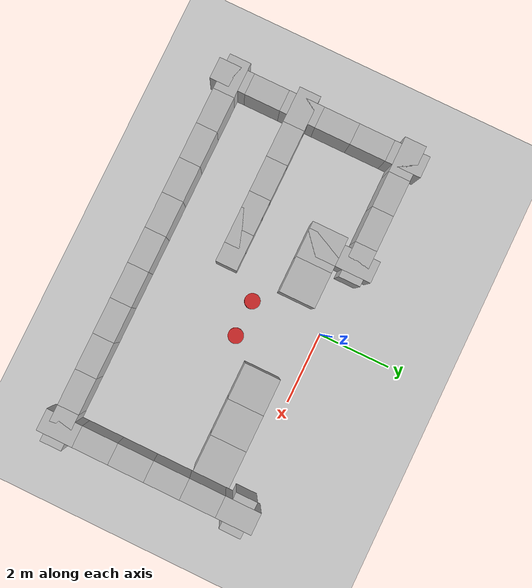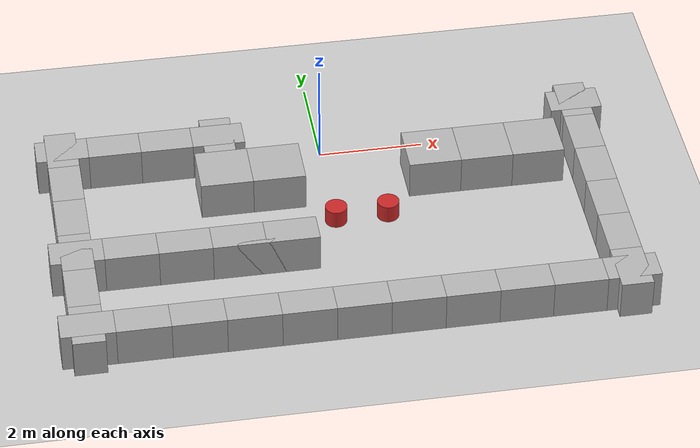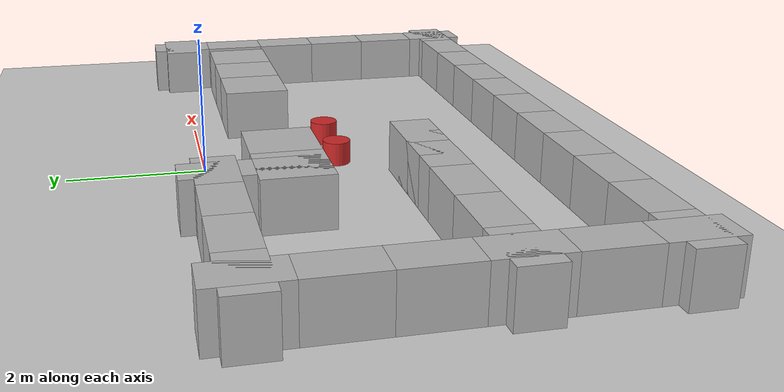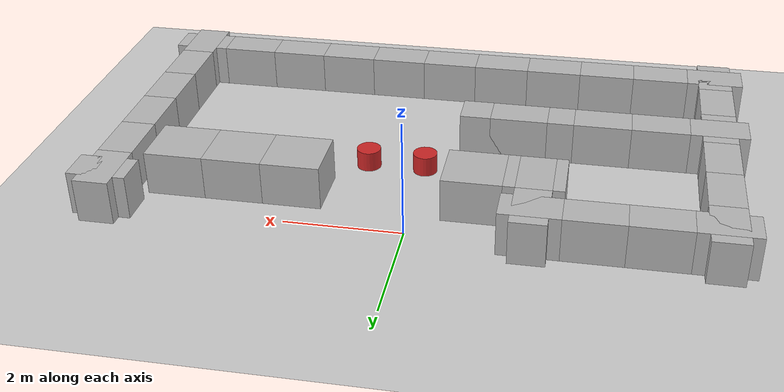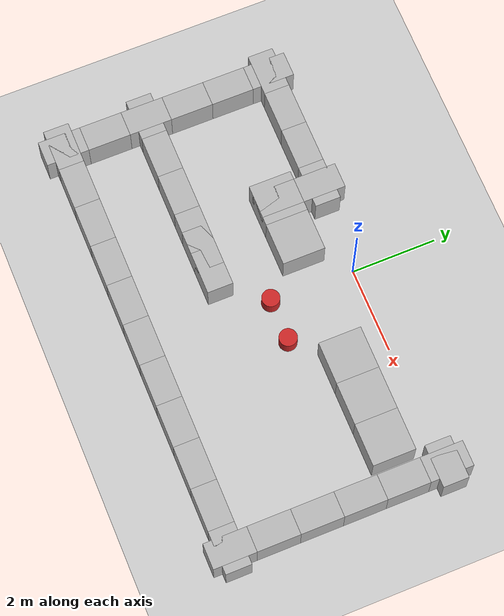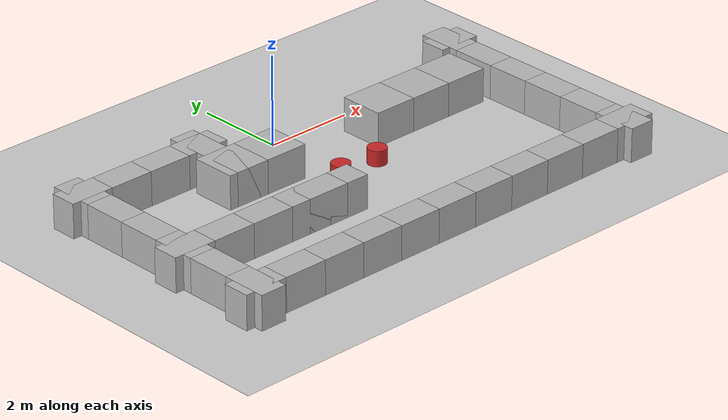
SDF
<sdf version="1.4">
 <world name="default">
  <model name="ground_plane">
   <static>1</static>
   <link name="link">
    <collision name="collision">
     <geometry><plane><normal>0 0 1</normal><size>100 100</size></plane></geometry>
     <surface><friction><ode><mu>100</mu><mu2>50</mu2></ode></friction></surface>
    </collision>
    <visual name="visual">
     <cast_shadows>0</cast_shadows>
     <geometry><plane><normal>0 0 1</normal><size>100 100</size></plane></geometry>
     <material>
      <script><uri>file://media/materials/scripts/gazebo.material</uri><name>Gazebo/Grey</name></script>
     </material>
    </visual>
    <velocity_decay><linear>0</linear><angular>0</angular></velocity_decay>
   </link>
  </model>
  <model name="wall_0">
   <static>1</static>
   <link name="link">
    <pose>0 0 0.25 0 -0 0</pose>
    <collision name="collision"><geometry><box><size>1 0.6 1</size></box></geometry></collision>
    <visual name="visual">
     <geometry>
      <mesh><uri>model://brick_box_3x1x3/meshes/simple_box.dae</uri><scale>1 0.6 1</scale></mesh>
     </geometry>
     <material>
      <script>
       <uri>model://brick_box_3x1x3/materials/scripts</uri>
       <uri>model://brick_box_3x1x3/materials/textures</uri>
       <name>BrickBox/Diffuse</name>
      </script>
     </material>
    </visual>
    <velocity_decay><linear>0</linear><angular>0</angular></velocity_decay>
   </link>
   <pose>4 -5 0 0 -0 0</pose>
  </model>
  <model name="wall_1">
   <static>1</static>
   <link name="link">
    <pose>0 0 0.25 0 -0 0</pose>
    <collision name="collision"><geometry><box><size>1 0.6 1</size></box></geometry></collision>
    <visual name="visual">
     <geometry>
      <mesh><uri>model://brick_box_3x1x3/meshes/simple_box.dae</uri><scale>1 0.6 1</scale></mesh>
     </geometry>
     <material>
      <script>
       <uri>model://brick_box_3x1x3/materials/scripts</uri>
       <uri>model://brick_box_3x1x3/materials/textures</uri>
       <name>BrickBox/Diffuse</name>
      </script>
     </material>
    </visual>
    <velocity_decay><linear>0</linear><angular>0</angular></velocity_decay>
   </link>
   <pose>3 -5 0 0 -0 0</pose>
  </model>
  <model name="wall_2">
   <static>1</static>
   <link name="link">
    <pose>0 0 0.25 0 -0 0</pose>
    <collision name="collision"><geometry><box><size>1 0.6 1</size></box></geometry></collision>
    <visual name="visual">
     <geometry>
      <mesh><uri>model://brick_box_3x1x3/meshes/simple_box.dae</uri><scale>1 0.6 1</scale></mesh>
     </geometry>
     <material>
      <script>
       <uri>model://brick_box_3x1x3/materials/scripts</uri>
       <uri>model://brick_box_3x1x3/materials/textures</uri>
       <name>BrickBox/Diffuse</name>
      </script>
     </material>
    </visual>
    <velocity_decay><linear>0</linear><angular>0</angular></velocity_decay>
   </link>
   <pose>2 -5 0 0 -0 0</pose>
  </model>
  <model name="wall_3">
   <static>1</static>
   <link name="link">
    <pose>0 0 0.25 0 -0 0</pose>
    <collision name="collision"><geometry><box><size>1 0.6 1</size></box></geometry></collision>
    <visual name="visual">
     <geometry>
      <mesh><uri>model://brick_box_3x1x3/meshes/simple_box.dae</uri><scale>1 0.6 1</scale></mesh>
     </geometry>
     <material>
      <script>
       <uri>model://brick_box_3x1x3/materials/scripts</uri>
       <uri>model://brick_box_3x1x3/materials/textures</uri>
       <name>BrickBox/Diffuse</name>
      </script>
     </material>
    </visual>
    <velocity_decay><linear>0</linear><angular>0</angular></velocity_decay>
   </link>
   <pose>5 -5 0 0 -0 0</pose>
  </model>
  <model name="wall_4">
   <static>1</static>
   <link name="link">
    <pose>0 0 0.25 0 -0 0</pose>
    <collision name="collision"><geometry><box><size>0.6 1 1</size></box></geometry></collision>
    <visual name="visual">
     <geometry>
      <mesh><uri>model://brick_box_3x1x3/meshes/simple_box.dae</uri><scale>0.6 1 1</scale></mesh>
     </geometry>
     <material>
      <script>
       <uri>model://brick_box_3x1x3/materials/scripts</uri>
       <uri>model://brick_box_3x1x3/materials/textures</uri>
       <name>BrickBox/Diffuse</name>
      </script>
     </material>
    </visual>
    <velocity_decay><linear>0</linear><angular>0</angular></velocity_decay>
   </link>
   <pose>5 -5 0 0 -0 0</pose>
  </model>
  <model name="wall_5">
   <static>1</static>
   <link name="link">
    <pose>0 0 0.25 0 -0 0</pose>
    <collision name="collision"><geometry><box><size>0.6 1 1</size></box></geometry></collision>
    <visual name="visual">
     <geometry>
      <mesh><uri>model://brick_box_3x1x3/meshes/simple_box.dae</uri><scale>0.6 1 1</scale></mesh>
     </geometry>
     <material>
      <script>
       <uri>model://brick_box_3x1x3/materials/scripts</uri>
       <uri>model://brick_box_3x1x3/materials/textures</uri>
       <name>BrickBox/Diffuse</name>
      </script>
     </material>
    </visual>
    <velocity_decay><linear>0</linear><angular>0</angular></velocity_decay>
   </link>
   <pose>5 -4 0 0 -0 0</pose>
  </model>
  <model name="wall_6">
   <static>1</static>
   <link name="link">
    <pose>0 0 0.25 0 -0 0</pose>
    <collision name="collision"><geometry><box><size>1 0.6 1</size></box></geometry></collision>
    <visual name="visual">
     <geometry>
      <mesh><uri>model://brick_box_3x1x3/meshes/simple_box.dae</uri><scale>1 0.6 1</scale></mesh>
     </geometry>
     <material>
      <script>
       <uri>model://brick_box_3x1x3/materials/scripts</uri>
       <uri>model://brick_box_3x1x3/materials/textures</uri>
       <name>BrickBox/Diffuse</name>
      </script>
     </material>
    </visual>
    <velocity_decay><linear>0</linear><angular>0</angular></velocity_decay>
   </link>
   <pose>1 -5 0 0 -0 0</pose>
  </model>
  <model name="wall_7">
   <static>1</static>
   <link name="link">
    <pose>0 0 0.25 0 -0 0</pose>
    <collision name="collision"><geometry><box><size>1 0.6 1</size></box></geometry></collision>
    <visual name="visual">
     <geometry>
      <mesh><uri>model://brick_box_3x1x3/meshes/simple_box.dae</uri><scale>1 0.6 1</scale></mesh>
     </geometry>
     <material>
      <script>
       <uri>model://brick_box_3x1x3/materials/scripts</uri>
       <uri>model://brick_box_3x1x3/materials/textures</uri>
       <name>BrickBox/Diffuse</name>
      </script>
     </material>
    </visual>
    <velocity_decay><linear>0</linear><angular>0</angular></velocity_decay>
   </link>
   <pose>0 -5 0 0 -0 0</pose>
  </model>
  <model name="wall_8">
   <static>1</static>
   <link name="link">
    <pose>0 0 0.25 0 -0 0</pose>
    <collision name="collision"><geometry><box><size>1 0.6 1</size></box></geometry></collision>
    <visual name="visual">
     <geometry>
      <mesh><uri>model://brick_box_3x1x3/meshes/simple_box.dae</uri><scale>1 0.6 1</scale></mesh>
     </geometry>
     <material>
      <script>
       <uri>model://brick_box_3x1x3/materials/scripts</uri>
       <uri>model://brick_box_3x1x3/materials/textures</uri>
       <name>BrickBox/Diffuse</name>
      </script>
     </material>
    </visual>
    <velocity_decay><linear>0</linear><angular>0</angular></velocity_decay>
   </link>
   <pose>-1 -5 0 0 -0 0</pose>
  </model>
  <model name="wall_9">
   <static>1</static>
   <link name="link">
    <pose>0 0 0.25 0 -0 0</pose>
    <collision name="collision"><geometry><box><size>1 0.6 1</size></box></geometry></collision>
    <visual name="visual">
     <geometry>
      <mesh><uri>model://brick_box_3x1x3/meshes/simple_box.dae</uri><scale>1 0.6 1</scale></mesh>
     </geometry>
     <material>
      <script>
       <uri>model://brick_box_3x1x3/materials/scripts</uri>
       <uri>model://brick_box_3x1x3/materials/textures</uri>
       <name>BrickBox/Diffuse</name>
      </script>
     </material>
    </visual>
    <velocity_decay><linear>0</linear><angular>0</angular></velocity_decay>
   </link>
   <pose>-2 -5 0 0 -0 0</pose>
  </model>
  <model name="wall_10">
   <static>1</static>
   <link name="link">
    <pose>0 0 0.25 0 -0 0</pose>
    <collision name="collision"><geometry><box><size>1 0.6 1</size></box></geometry></collision>
    <visual name="visual">
     <geometry>
      <mesh><uri>model://brick_box_3x1x3/meshes/simple_box.dae</uri><scale>1 0.6 1</scale></mesh>
     </geometry>
     <material>
      <script>
       <uri>model://brick_box_3x1x3/materials/scripts</uri>
       <uri>model://brick_box_3x1x3/materials/textures</uri>
       <name>BrickBox/Diffuse</name>
      </script>
     </material>
    </visual>
    <velocity_decay><linear>0</linear><angular>0</angular></velocity_decay>
   </link>
   <pose>-3 -5 0 0 -0 0</pose>
  </model>
  <model name="wall_11">
   <static>1</static>
   <link name="link">
    <pose>0 0 0.25 0 -0 0</pose>
    <collision name="collision"><geometry><box><size>1 0.6 1</size></box></geometry></collision>
    <visual name="visual">
     <geometry>
      <mesh><uri>model://brick_box_3x1x3/meshes/simple_box.dae</uri><scale>1 0.6 1</scale></mesh>
     </geometry>
     <material>
      <script>
       <uri>model://brick_box_3x1x3/materials/scripts</uri>
       <uri>model://brick_box_3x1x3/materials/textures</uri>
       <name>BrickBox/Diffuse</name>
      </script>
     </material>
    </visual>
    <velocity_decay><linear>0</linear><angular>0</angular></velocity_decay>
   </link>
   <pose>-4 -5 0 0 -0 0</pose>
  </model>
  <model name="wall_12">
   <static>1</static>
   <link name="link">
    <pose>0 0 0.25 0 -0 0</pose>
    <collision name="collision"><geometry><box><size>1 0.6 1</size></box></geometry></collision>
    <visual name="visual">
     <geometry>
      <mesh><uri>model://brick_box_3x1x3/meshes/simple_box.dae</uri><scale>1 0.6 1</scale></mesh>
     </geometry>
     <material>
      <script>
       <uri>model://brick_box_3x1x3/materials/scripts</uri>
       <uri>model://brick_box_3x1x3/materials/textures</uri>
       <name>BrickBox/Diffuse</name>
      </script>
     </material>
    </visual>
    <velocity_decay><linear>0</linear><angular>0</angular></velocity_decay>
   </link>
   <pose>-5 -5 0 0 -0 0</pose>
  </model>
  <model name="wall_13">
   <static>1</static>
   <link name="link">
    <pose>0 0 0.25 0 -0 0</pose>
    <collision name="collision"><geometry><box><size>0.6 1 1</size></box></geometry></collision>
    <visual name="visual">
     <geometry>
      <mesh><uri>model://brick_box_3x1x3/meshes/simple_box.dae</uri><scale>0.6 1 1</scale></mesh>
     </geometry>
     <material>
      <script>
       <uri>model://brick_box_3x1x3/materials/scripts</uri>
       <uri>model://brick_box_3x1x3/materials/textures</uri>
       <name>BrickBox/Diffuse</name>
      </script>
     </material>
    </visual>
    <velocity_decay><linear>0</linear><angular>0</angular></velocity_decay>
   </link>
   <pose>5 -3 0 0 -0 0</pose>
  </model>
  <model name="wall_14">
   <static>1</static>
   <link name="link">
    <pose>0 0 0.25 0 -0 0</pose>
    <collision name="collision"><geometry><box><size>0.6 1 1</size></box></geometry></collision>
    <visual name="visual">
     <geometry>
      <mesh><uri>model://brick_box_3x1x3/meshes/simple_box.dae</uri><scale>0.6 1 1</scale></mesh>
     </geometry>
     <material>
      <script>
       <uri>model://brick_box_3x1x3/materials/scripts</uri>
       <uri>model://brick_box_3x1x3/materials/textures</uri>
       <name>BrickBox/Diffuse</name>
      </script>
     </material>
    </visual>
    <velocity_decay><linear>0</linear><angular>0</angular></velocity_decay>
   </link>
   <pose>5 -2 0 0 -0 0</pose>
  </model>
  <model name="wall_15">
   <static>1</static>
   <link name="link">
    <pose>0 0 0.25 0 -0 0</pose>
    <collision name="collision"><geometry><box><size>0.6 1 1</size></box></geometry></collision>
    <visual name="visual">
     <geometry>
      <mesh><uri>model://brick_box_3x1x3/meshes/simple_box.dae</uri><scale>0.6 1 1</scale></mesh>
     </geometry>
     <material>
      <script>
       <uri>model://brick_box_3x1x3/materials/scripts</uri>
       <uri>model://brick_box_3x1x3/materials/textures</uri>
       <name>BrickBox/Diffuse</name>
      </script>
     </material>
    </visual>
    <velocity_decay><linear>0</linear><angular>0</angular></velocity_decay>
   </link>
   <pose>5 -1 0 0 -0 0</pose>
  </model>
  <model name="wall_16">
   <static>1</static>
   <link name="link">
    <pose>0 0 0.25 0 -0 0</pose>
    <collision name="collision"><geometry><box><size>0.6 1 1</size></box></geometry></collision>
    <visual name="visual">
     <geometry>
      <mesh><uri>model://brick_box_3x1x3/meshes/simple_box.dae</uri><scale>0.6 1 1</scale></mesh>
     </geometry>
     <material>
      <script>
       <uri>model://brick_box_3x1x3/materials/scripts</uri>
       <uri>model://brick_box_3x1x3/materials/textures</uri>
       <name>BrickBox/Diffuse</name>
      </script>
     </material>
    </visual>
    <velocity_decay><linear>0</linear><angular>0</angular></velocity_decay>
   </link>
   <pose>5 0 0 0 -0 0</pose>
  </model>
  <model name="wall_33">
   <static>1</static>
   <link name="link">
    <pose>0 0 0.25 0 -0 0</pose>
    <collision name="collision"><geometry><box><size>0.6 1 1</size></box></geometry></collision>
    <visual name="visual">
     <geometry>
      <mesh><uri>model://brick_box_3x1x3/meshes/simple_box.dae</uri><scale>0.6 1 1</scale></mesh>
     </geometry>
     <material>
      <script>
       <uri>model://brick_box_3x1x3/materials/scripts</uri>
       <uri>model://brick_box_3x1x3/materials/textures</uri>
       <name>BrickBox/Diffuse</name>
      </script>
     </material>
    </visual>
    <velocity_decay><linear>0</linear><angular>0</angular></velocity_decay>
   </link>
   <pose>-5 -5 0 0 -0 0</pose>
  </model>
  <model name="wall_34">
   <static>1</static>
   <link name="link">
    <pose>0 0 0.25 0 -0 0</pose>
    <collision name="collision"><geometry><box><size>0.6 1 1</size></box></geometry></collision>
    <visual name="visual">
     <geometry>
      <mesh><uri>model://brick_box_3x1x3/meshes/simple_box.dae</uri><scale>0.6 1 1</scale></mesh>
     </geometry>
     <material>
      <script>
       <uri>model://brick_box_3x1x3/materials/scripts</uri>
       <uri>model://brick_box_3x1x3/materials/textures</uri>
       <name>BrickBox/Diffuse</name>
      </script>
     </material>
    </visual>
    <velocity_decay><linear>0</linear><angular>0</angular></velocity_decay>
   </link>
   <pose>-5 -4 0 0 -0 0</pose>
  </model>
  <model name="wall_35">
   <static>1</static>
   <link name="link">
    <pose>0 0 0.25 0 -0 0</pose>
    <collision name="collision"><geometry><box><size>0.6 1 1</size></box></geometry></collision>
    <visual name="visual">
     <geometry>
      <mesh><uri>model://brick_box_3x1x3/meshes/simple_box.dae</uri><scale>0.6 1 1</scale></mesh>
     </geometry>
     <material>
      <script>
       <uri>model://brick_box_3x1x3/materials/scripts</uri>
       <uri>model://brick_box_3x1x3/materials/textures</uri>
       <name>BrickBox/Diffuse</name>
      </script>
     </material>
    </visual>
    <velocity_decay><linear>0</linear><angular>0</angular></velocity_decay>
   </link>
   <pose>-5 -3 0 0 -0 0</pose>
  </model>
  <model name="wall_36">
   <static>1</static>
   <link name="link">
    <pose>0 0 0.25 0 -0 0</pose>
    <collision name="collision"><geometry><box><size>0.6 1 1</size></box></geometry></collision>
    <visual name="visual">
     <geometry>
      <mesh><uri>model://brick_box_3x1x3/meshes/simple_box.dae</uri><scale>0.6 1 1</scale></mesh>
     </geometry>
     <material>
      <script>
       <uri>model://brick_box_3x1x3/materials/scripts</uri>
       <uri>model://brick_box_3x1x3/materials/textures</uri>
       <name>BrickBox/Diffuse</name>
      </script>
     </material>
    </visual>
    <velocity_decay><linear>0</linear><angular>0</angular></velocity_decay>
   </link>
   <pose>-5 -2 0 0 -0 0</pose>
  </model>
  <model name="wall_37">
   <static>1</static>
   <link name="link">
    <pose>0 0 0.25 0 -0 0</pose>
    <collision name="collision"><geometry><box><size>0.6 1 1</size></box></geometry></collision>
    <visual name="visual">
     <geometry>
      <mesh><uri>model://brick_box_3x1x3/meshes/simple_box.dae</uri><scale>0.6 1 1</scale></mesh>
     </geometry>
     <material>
      <script>
       <uri>model://brick_box_3x1x3/materials/scripts</uri>
       <uri>model://brick_box_3x1x3/materials/textures</uri>
       <name>BrickBox/Diffuse</name>
      </script>
     </material>
    </visual>
    <velocity_decay><linear>0</linear><angular>0</angular></velocity_decay>
   </link>
   <pose>-5 -1 0 0 -0 0</pose>
  </model>
  <model name="wall_38">
   <static>1</static>
   <link name="link">
    <pose>0 0 0.25 0 -0 0</pose>
    <collision name="collision"><geometry><box><size>0.6 1 1</size></box></geometry></collision>
    <visual name="visual">
     <geometry>
      <mesh><uri>model://brick_box_3x1x3/meshes/simple_box.dae</uri><scale>0.6 1 1</scale></mesh>
     </geometry>
     <material>
      <script>
       <uri>model://brick_box_3x1x3/materials/scripts</uri>
       <uri>model://brick_box_3x1x3/materials/textures</uri>
       <name>BrickBox/Diffuse</name>
      </script>
     </material>
    </visual>
    <velocity_decay><linear>0</linear><angular>0</angular></velocity_decay>
   </link>
   <pose>-5 0 0 0 -0 0</pose>
  </model>
  <model name="wall">
   <static>1</static>
   <link name="link">
    <pose>0 0 0.25 0 -0 0</pose>
    <collision name="collision"><geometry><box><size>1 0.6 1</size></box></geometry></collision>
    <visual name="visual">
     <geometry>
      <mesh><uri>model://brick_box_3x1x3/meshes/simple_box.dae</uri><scale>1 0.6 1</scale></mesh>
     </geometry>
     <material>
      <script>
       <uri>model://brick_box_3x1x3/materials/scripts</uri>
       <uri>model://brick_box_3x1x3/materials/textures</uri>
       <name>BrickBox/Diffuse</name>
      </script>
     </material>
    </visual>
    <velocity_decay><linear>0</linear><angular>0</angular></velocity_decay>
   </link>
   <pose>-5 0 0 0 -0 0</pose>
  </model>
  <model name="wall_44">
   <static>1</static>
   <link name="link">
    <pose>0 0 0.25 0 -0 0</pose>
    <collision name="collision"><geometry><box><size>1 0.6 1</size></box></geometry></collision>
    <visual name="visual">
     <geometry>
      <mesh><uri>model://brick_box_3x1x3/meshes/simple_box.dae</uri><scale>1 0.6 1</scale></mesh>
     </geometry>
     <material>
      <script>
       <uri>model://brick_box_3x1x3/materials/scripts</uri>
       <uri>model://brick_box_3x1x3/materials/textures</uri>
       <name>BrickBox/Diffuse</name>
      </script>
     </material>
    </visual>
    <velocity_decay><linear>0</linear><angular>0</angular></velocity_decay>
   </link>
   <pose>-4 0 0 0 -0 0</pose>
  </model>
  <model name="wall_45">
   <static>1</static>
   <link name="link">
    <pose>0 0 0.25 0 -0 0</pose>
    <collision name="collision"><geometry><box><size>1 0.6 1</size></box></geometry></collision>
    <visual name="visual">
     <geometry>
      <mesh><uri>model://brick_box_3x1x3/meshes/simple_box.dae</uri><scale>1 0.6 1</scale></mesh>
     </geometry>
     <material>
      <script>
       <uri>model://brick_box_3x1x3/materials/scripts</uri>
       <uri>model://brick_box_3x1x3/materials/textures</uri>
       <name>BrickBox/Diffuse</name>
      </script>
     </material>
    </visual>
    <velocity_decay><linear>0</linear><angular>0</angular></velocity_decay>
   </link>
   <pose>-3 0 0 0 -0 0</pose>
  </model>
  <model name="wall_46">
   <static>1</static>
   <link name="link">
    <pose>0 0 0.25 0 -0 0</pose>
    <collision name="collision"><geometry><box><size>1 0.6 1</size></box></geometry></collision>
    <visual name="visual">
     <geometry>
      <mesh><uri>model://brick_box_3x1x3/meshes/simple_box.dae</uri><scale>1 0.6 1</scale></mesh>
     </geometry>
     <material>
      <script>
       <uri>model://brick_box_3x1x3/materials/scripts</uri>
       <uri>model://brick_box_3x1x3/materials/textures</uri>
       <name>BrickBox/Diffuse</name>
      </script>
     </material>
    </visual>
    <velocity_decay><linear>0</linear><angular>0</angular></velocity_decay>
   </link>
   <pose>5 0 0 0 -0 0</pose>
  </model>
  <model name="wall_50">
   <static>1</static>
   <link name="link">
    <pose>0 0 0.25 0 -0 0</pose>
    <collision name="collision"><geometry><box><size>1 0.6 1</size></box></geometry></collision>
    <visual name="visual">
     <geometry>
      <mesh><uri>model://brick_box_3x1x3/meshes/simple_box.dae</uri><scale>1 0.6 1</scale></mesh>
     </geometry>
     <material>
      <script>
       <uri>model://brick_box_3x1x3/materials/scripts</uri>
       <uri>model://brick_box_3x1x3/materials/textures</uri>
       <name>BrickBox/Diffuse</name>
      </script>
     </material>
    </visual>
    <velocity_decay><linear>0</linear><angular>0</angular></velocity_decay>
   </link>
   <pose>-2 0 0 0 -0 0</pose>
  </model>
  <model name="wall_51">
   <static>1</static>
   <link name="link">
    <pose>0 0 0.25 0 -0 0</pose>
    <collision name="collision"><geometry><box><size>0.6 1 1</size></box></geometry></collision>
    <visual name="visual">
     <geometry>
      <mesh><uri>model://brick_box_3x1x3/meshes/simple_box.dae</uri><scale>0.6 1 1</scale></mesh>
     </geometry>
     <material>
      <script>
       <uri>model://brick_box_3x1x3/materials/scripts</uri>
       <uri>model://brick_box_3x1x3/materials/textures</uri>
       <name>BrickBox/Diffuse</name>
      </script>
     </material>
    </visual>
    <velocity_decay><linear>0</linear><angular>0</angular></velocity_decay>
   </link>
   <pose>-2 0 0 0 -0 0</pose>
  </model>
  <model name="wall_69">
   <static>1</static>
   <link name="link">
    <pose>0 0 0.25 0 -0 0</pose>
    <collision name="collision"><geometry><box><size>1 0.6 1</size></box></geometry></collision>
    <visual name="visual">
     <geometry>
      <mesh><uri>model://brick_box_3x1x3/meshes/simple_box.dae</uri><scale>1 0.6 1</scale></mesh>
     </geometry>
     <material>
      <script>
       <uri>model://brick_box_3x1x3/materials/scripts</uri>
       <uri>model://brick_box_3x1x3/materials/textures</uri>
       <name>BrickBox/Diffuse</name>
      </script>
     </material>
    </visual>
    <velocity_decay><linear>0</linear><angular>0</angular></velocity_decay>
   </link>
   <pose>-5 -3 0 0 -0 0</pose>
  </model>
  <model name="wall_70">
   <static>1</static>
   <link name="link">
    <pose>0 0 0.25 0 -0 0</pose>
    <collision name="collision"><geometry><box><size>1 0.6 1</size></box></geometry></collision>
    <visual name="visual">
     <geometry>
      <mesh><uri>model://brick_box_3x1x3/meshes/simple_box.dae</uri><scale>1 0.6 1</scale></mesh>
     </geometry>
     <material>
      <script>
       <uri>model://brick_box_3x1x3/materials/scripts</uri>
       <uri>model://brick_box_3x1x3/materials/textures</uri>
       <name>BrickBox/Diffuse</name>
      </script>
     </material>
    </visual>
    <velocity_decay><linear>0</linear><angular>0</angular></velocity_decay>
   </link>
   <pose>-4 -3 0 0 -0 0</pose>
  </model>
  <model name="wall_58">
   <static>1</static>
   <link name="link">
    <pose>0 0 0.25 0 -0 0</pose>
    <collision name="collision"><geometry><box><size>1 0.6 1</size></box></geometry></collision>
    <visual name="visual">
     <geometry>
      <mesh><uri>model://brick_box_3x1x3/meshes/simple_box.dae</uri><scale>1 0.6 1</scale></mesh>
     </geometry>
     <material>
      <script>
       <uri>model://brick_box_3x1x3/materials/scripts</uri>
       <uri>model://brick_box_3x1x3/materials/textures</uri>
       <name>BrickBox/Diffuse</name>
      </script>
     </material>
    </visual>
    <velocity_decay><linear>0</linear><angular>0</angular></velocity_decay>
   </link>
   <pose>-1 -3 0 0 -0 0</pose>
  </model>
  <model name="wall_62">
   <static>1</static>
   <link name="link">
    <pose>0 0 0.25 0 -0 0</pose>
    <collision name="collision"><geometry><box><size>1 0.6 1</size></box></geometry></collision>
    <visual name="visual">
     <geometry>
      <mesh><uri>model://brick_box_3x1x3/meshes/simple_box.dae</uri><scale>1 0.6 1</scale></mesh>
     </geometry>
     <material>
      <script>
       <uri>model://brick_box_3x1x3/materials/scripts</uri>
       <uri>model://brick_box_3x1x3/materials/textures</uri>
       <name>BrickBox/Diffuse</name>
      </script>
     </material>
    </visual>
    <velocity_decay><linear>0</linear><angular>0</angular></velocity_decay>
   </link>
   <pose>-1.53695 -3 0 0 -0 0</pose>
  </model>
  <model name="wall_89">
   <static>1</static>
   <link name="link">
    <pose>0 0 0.25 0 -0 0</pose>
    <collision name="collision"><geometry><box><size>1 0.6 1</size></box></geometry></collision>
    <visual name="visual">
     <geometry>
      <mesh><uri>model://brick_box_3x1x3/meshes/simple_box.dae</uri><scale>1 0.6 1</scale></mesh>
     </geometry>
     <material>
      <script>
       <uri>model://brick_box_3x1x3/materials/scripts</uri>
       <uri>model://brick_box_3x1x3/materials/textures</uri>
       <name>BrickBox/Diffuse</name>
      </script>
     </material>
    </visual>
    <velocity_decay><linear>0</linear><angular>0</angular></velocity_decay>
   </link>
   <pose>-3 -3 0 0 -0 0</pose>
  </model>
  <model name="wall_90">
   <static>1</static>
   <link name="link">
    <pose>0 0 0.25 0 -0 0</pose>
    <collision name="collision"><geometry><box><size>1 0.6 1</size></box></geometry></collision>
    <visual name="visual">
     <geometry>
      <mesh><uri>model://brick_box_3x1x3/meshes/simple_box.dae</uri><scale>1 0.6 1</scale></mesh>
     </geometry>
     <material>
      <script>
       <uri>model://brick_box_3x1x3/materials/scripts</uri>
       <uri>model://brick_box_3x1x3/materials/textures</uri>
       <name>BrickBox/Diffuse</name>
      </script>
     </material>
    </visual>
    <velocity_decay><linear>0</linear><angular>0</angular></velocity_decay>
   </link>
   <pose>-2 -3 0 0 -0 0</pose>
  </model>
  <model name="movable_0">
   <link name="gl_">
    <collision name="collision">
     <geometry><cylinder><radius>0.21</radius><length>0.35</length></cylinder></geometry>
    </collision>
    <visual name="visual">
     <geometry><cylinder><radius>0.21</radius><length>0.35</length></cylinder></geometry>
     <material>
      <script><uri>file://media/materials/scripts/gazebo.material</uri><name>Gazebo/Red</name></script>
     </material>
    </visual>
    <velocity_decay><linear>0</linear><angular>0</angular></velocity_decay>
    <inertial>
     <inertia><ixx>1</ixx><ixy>0</ixy><ixz>0</ixz><iyy>1</iyy><iyz>0</iyz><izz>1</izz></inertia>
     <mass>1</mass>
    </inertial>
   </link>
   <static>0</static>
   <pose>1 -2 0.174991 0 -0 0</pose>
  </model>
  <model name="wall_49">
   <static>1</static>
   <link name="link">
    <pose>0 0 0.25 0 -0 0</pose>
    <collision name="collision"><geometry><box><size>0.6 1 1</size></box></geometry></collision>
    <visual name="visual">
     <geometry>
      <mesh><uri>model://brick_box_3x1x3/meshes/simple_box.dae</uri><scale>0.6 1 1</scale></mesh>
     </geometry>
     <material>
      <script>
       <uri>model://brick_box_3x1x3/materials/scripts</uri>
       <uri>model://brick_box_3x1x3/materials/textures</uri>
       <name>BrickBox/Diffuse</name>
      </script>
     </material>
    </visual>
    <velocity_decay><linear>0</linear><angular>0</angular></velocity_decay>
   </link>
   <pose>-2 -1 0 0 -0 0</pose>
  </model>
  <model name="wall_59">
   <static>1</static>
   <link name="link">
    <pose>0 0 0.25 0 -0 0</pose>
    <collision name="collision"><geometry><box><size>1 1 1</size></box></geometry></collision>
    <visual name="visual">
     <geometry><mesh><uri>model://brick_box_3x1x3/meshes/simple_box.dae</uri><scale>1 1 1</scale></mesh></geometry>
     <material>
      <script>
       <uri>model://brick_box_3x1x3/materials/scripts</uri>
       <uri>model://brick_box_3x1x3/materials/textures</uri>
       <name>BrickBox/Diffuse</name>
      </script>
     </material>
    </visual>
    <velocity_decay><linear>0</linear><angular>0</angular></velocity_decay>
   </link>
   <pose>-2 -1 0 0 -0 0</pose>
  </model>
  <model name="wall_61">
   <static>1</static>
   <link name="link">
    <pose>0 0 0.25 0 -0 0</pose>
    <collision name="collision"><geometry><box><size>1 1 1</size></box></geometry></collision>
    <visual name="visual">
     <geometry><mesh><uri>model://brick_box_3x1x3/meshes/simple_box.dae</uri><scale>1 1 1</scale></mesh></geometry>
     <material>
      <script>
       <uri>model://brick_box_3x1x3/materials/scripts</uri>
       <uri>model://brick_box_3x1x3/materials/textures</uri>
       <name>BrickBox/Diffuse</name>
      </script>
     </material>
    </visual>
    <velocity_decay><linear>0</linear><angular>0</angular></velocity_decay>
   </link>
   <pose>-1 -1 0 0 -0 0</pose>
  </model>
  <model name="wall_74">
   <static>1</static>
   <link name="link">
    <pose>0 0 0.25 0 -0 0</pose>
    <collision name="collision"><geometry><box><size>1 1 1</size></box></geometry></collision>
    <visual name="visual">
     <geometry><mesh><uri>model://brick_box_3x1x3/meshes/simple_box.dae</uri><scale>1 1 1</scale></mesh></geometry>
     <material>
      <script>
       <uri>model://brick_box_3x1x3/materials/scripts</uri>
       <uri>model://brick_box_3x1x3/materials/textures</uri>
       <name>BrickBox/Diffuse</name>
      </script>
     </material>
    </visual>
    <velocity_decay><linear>0</linear><angular>0</angular></velocity_decay>
   </link>
   <pose>2 -1 0 0 -0 0</pose>
  </model>
  <model name="wall_81">
   <static>1</static>
   <link name="link">
    <pose>0 0 0.25 0 -0 0</pose>
    <collision name="collision"><geometry><box><size>1 1 1</size></box></geometry></collision>
    <visual name="visual">
     <geometry><mesh><uri>model://brick_box_3x1x3/meshes/simple_box.dae</uri><scale>1 1 1</scale></mesh></geometry>
     <material>
      <script>
       <uri>model://brick_box_3x1x3/materials/scripts</uri>
       <uri>model://brick_box_3x1x3/materials/textures</uri>
       <name>BrickBox/Diffuse</name>
      </script>
     </material>
    </visual>
    <velocity_decay><linear>0</linear><angular>0</angular></velocity_decay>
   </link>
   <pose>3 -1 0 0 -0 0</pose>
  </model>
  <model name="wall_83">
   <static>1</static>
   <link name="link">
    <pose>0 0 0.25 0 -0 0</pose>
    <collision name="collision"><geometry><box><size>1 1 1</size></box></geometry></collision>
    <visual name="visual">
     <geometry><mesh><uri>model://brick_box_3x1x3/meshes/simple_box.dae</uri><scale>1 1 1</scale></mesh></geometry>
     <material>
      <script>
       <uri>model://brick_box_3x1x3/materials/scripts</uri>
       <uri>model://brick_box_3x1x3/materials/textures</uri>
       <name>BrickBox/Diffuse</name>
      </script>
     </material>
    </visual>
    <velocity_decay><linear>0</linear><angular>0</angular></velocity_decay>
   </link>
   <pose>4 -1 0 0 -0 0</pose>
  </model>
  <model name="movable_4">
   <link name="gl_">
    <collision name="collision">
     <geometry><cylinder><radius>0.21</radius><length>0.35</length></cylinder></geometry>
    </collision>
    <visual name="visual">
     <geometry><cylinder><radius>0.21</radius><length>0.35</length></cylinder></geometry>
     <material>
      <script><uri>file://media/materials/scripts/gazebo.material</uri><name>Gazebo/Red</name></script>
     </material>
    </visual>
    <velocity_decay><linear>0</linear><angular>0</angular></velocity_decay>
    <inertial>
     <inertia><ixx>1</ixx><ixy>0</ixy><ixz>0</ixz><iyy>1</iyy><iyz>0</iyz><izz>1</izz></inertia>
     <mass>1</mass>
    </inertial>
   </link>
   <static>0</static>
   <pose>0 -2 0.174991 0 -0 0</pose>
  </model>
 </world>
</sdf>
